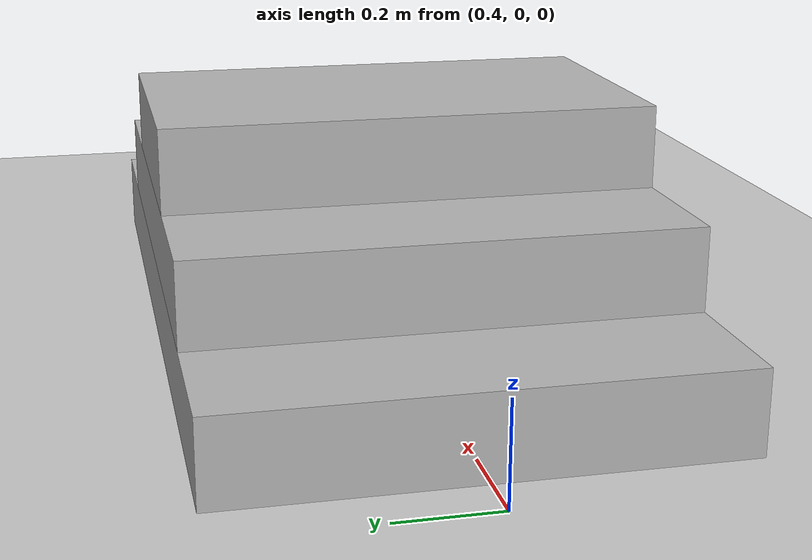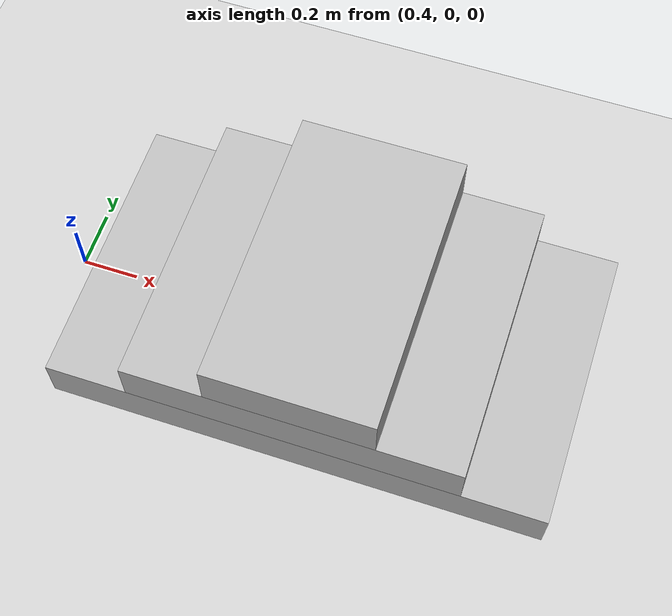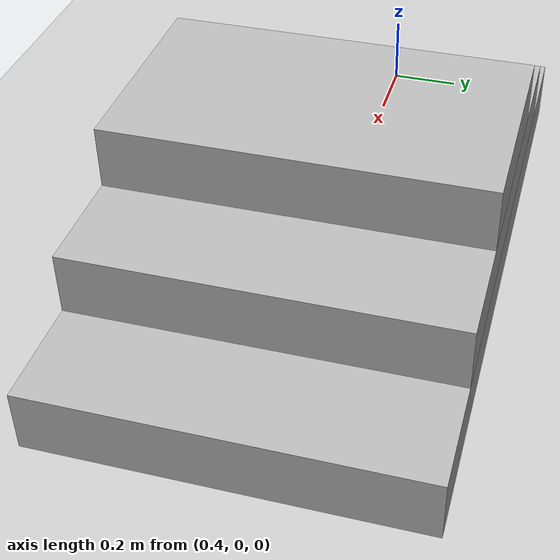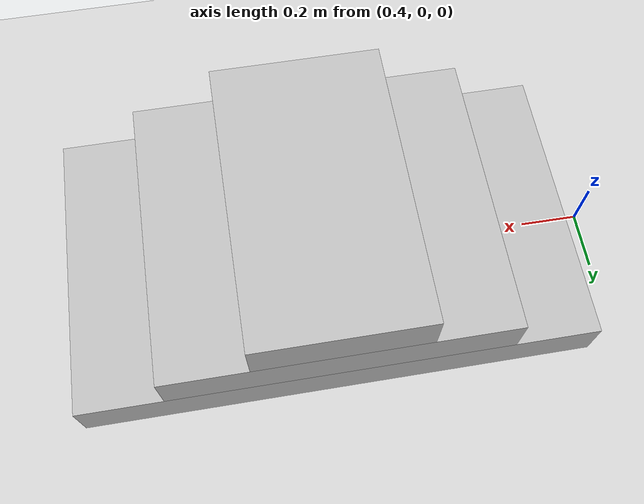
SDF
<?xml version="1.0" ?>
<sdf version="1.4">
  <world name="default">
    <include>
      <uri>model://ground_plane</uri>
    </include>
    <include>
      <uri>model://sun</uri>
    </include>
    <include>
      <uri>model://gazebo_worlds/models/demo_stairs</uri>
    </include>
    <physics type="ode">
      <gravity>0 0 -9.81</gravity>
    </physics>
  </world>
</sdf>

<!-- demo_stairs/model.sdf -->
<sdf version='1.4'>
  <model name="demo_stairs">
    <static>true</static>
    <!-- The dimensions of the complete object are 1.74x1.0x0.51
         With the following pose, the stairs start 0.5m away from the origin -->
    <pose>1.37 0 0 0 0 0</pose>

    <link name='stairs1'>
      <pose>0 0 0.085 0 0 0</pose>

      <collision name='collision'>
        <geometry>
          <box>
            <size>1.74 1.0 0.17</size>
          </box>
        </geometry>
      </collision>

      <visual name='visual'>
        <geometry>
          <box>
            <size>1.74 1.0 0.17</size>
          </box>
        </geometry>
      </visual>
    </link>

    <link name='stairs2'>
      <pose>0 0 0.255 0 0 0</pose>

      <collision name='collision'>
        <geometry>
          <box>
            <size>1.16 1.0 0.17</size>
          </box>
        </geometry>
      </collision>

      <visual name='visual'>
        <geometry>
          <box>
            <size>1.16 1.0 0.17</size>
          </box>
        </geometry>
      </visual>
    </link>

    <link name='top'>
      <pose>0 0 0.425 0 0 0</pose>

      <collision name='collision'>
        <geometry>
          <box>
            <size>0.58 1.0 0.17</size>
          </box>
        </geometry>
      </collision>

      <visual name='visual'>
        <geometry>
          <box>
            <size>0.58 1.0 0.17</size>
          </box>
        </geometry>
      </visual>
    </link>
  </model>
</sdf>
